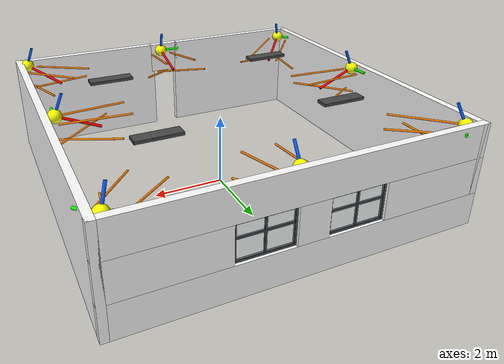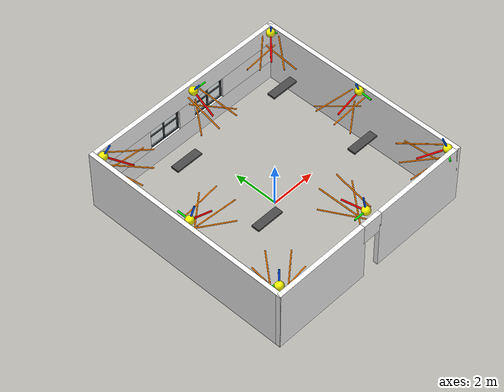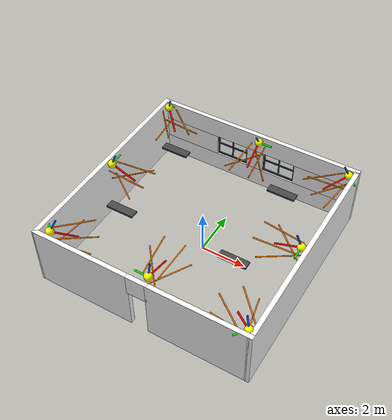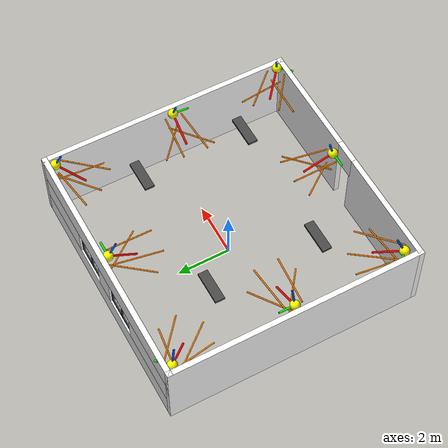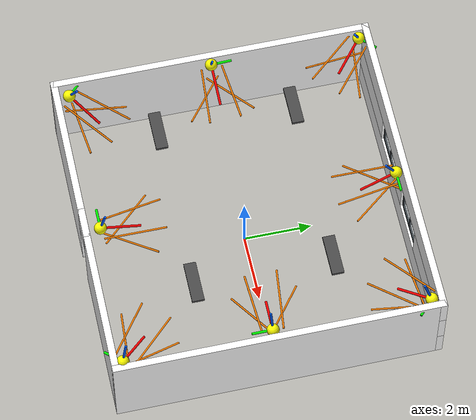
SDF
<sdf version="1.12">
 <world name="small_factory_room">
  <plugin name="gz::sim::systems::Physics" filename="gz-sim-physics-system"/>
  <plugin name="gz::sim::systems::Sensors" filename="gz-sim-sensors-system">
   <render_engine>ogre2</render_engine>
  </plugin>
  <plugin name="gz::sim::systems::SceneBroadcaster" filename="gz-sim-scene-broadcaster-system"/>
  <plugin name="gz::sim::systems::UserCommands" filename="gz-sim-user-commands-system"/>
  <gravity>0 0 -9.8100000000000005</gravity>
  <physics name="factory_physics" type="ode">
   <max_step_size>0.0040000000000000001</max_step_size>
   <real_time_factor>1</real_time_factor>
   <real_time_update_rate>250</real_time_update_rate>
  </physics>
  <scene>
   <ambient>0.300000012 0.300000012 0.300000012 1</ambient>
   <background>0.119999997 0.119999997 0.140000001 1</background>
   <grid>false</grid>
   <shadows>true</shadows>
  </scene>
  <magnetic_field>5.5644999999999998e-06 2.2875799999999999e-05 -4.2388400000000002e-05</magnetic_field>
  <atmosphere type="adiabatic"/>
  <joint name="ur5_rg2_world_joint" type="fixed"><parent>world</parent><child>ur5_rg2::base_link</child></joint>
  <model name="lamp_fixture_01">
   <static>true</static>
   <link name="lamp_fixture_01_link">
    <pose>-2.5 -2 2.8599999999999999 0 0 0</pose>
    <visual name="lamp_fixture_01_housing">
     <cast_shadows>false</cast_shadows>
     <geometry><box><size>1.2 0.34999999999999998 0.080000000000000002</size></box></geometry>
     <material>
      <ambient>0.180000007 0.180000007 0.180000007 1</ambient>
      <diffuse>0.280000001 0.280000001 0.280000001 1</diffuse>
      <specular>0.0799999982 0.0799999982 0.0799999982 1</specular>
     </material>
     <plugin filename="gz-sim-label-system" name="gz::sim::systems::Label"><label>10</label></plugin>
    </visual>
    <visual name="lamp_fixture_01_diffuser">
     <cast_shadows>false</cast_shadows>
     <pose>0 0 -0.040000000000000001 0 0 0</pose>
     <geometry><box><size>1.0800000000000001 0.23999999999999999 0.029999999999999999</size></box></geometry>
     <material>
      <ambient>0.920000017 0.920000017 0.860000014 1</ambient>
      <diffuse>0.980000019 0.980000019 0.899999976 1</diffuse>
      <specular>0.140000001 0.140000001 0.140000001 1</specular>
      <emissive>0.150000006 0.150000006 0.119999997 1</emissive>
     </material>
     <plugin filename="gz-sim-label-system" name="gz::sim::systems::Label"><label>10</label></plugin>
    </visual>
    <inertial>
     <mass>1</mass>
     <inertia><ixx>1</ixx><ixy>0</ixy><ixz>0</ixz><iyy>1</iyy><iyz>0</iyz><izz>1</izz></inertia>
    </inertial>
   </link>
  </model>
  <model name="lamp_fixture_02">
   <static>true</static>
   <link name="lamp_fixture_02_link">
    <pose>2.5 -2 2.8599999999999999 0 0 0</pose>
    <visual name="lamp_fixture_02_housing">
     <cast_shadows>false</cast_shadows>
     <geometry><box><size>1.2 0.34999999999999998 0.080000000000000002</size></box></geometry>
     <material>
      <ambient>0.180000007 0.180000007 0.180000007 1</ambient>
      <diffuse>0.280000001 0.280000001 0.280000001 1</diffuse>
      <specular>0.0799999982 0.0799999982 0.0799999982 1</specular>
     </material>
     <plugin filename="gz-sim-label-system" name="gz::sim::systems::Label"><label>10</label></plugin>
    </visual>
    <visual name="lamp_fixture_02_diffuser">
     <cast_shadows>false</cast_shadows>
     <pose>0 0 -0.040000000000000001 0 0 0</pose>
     <geometry><box><size>1.0800000000000001 0.23999999999999999 0.029999999999999999</size></box></geometry>
     <material>
      <ambient>0.920000017 0.920000017 0.860000014 1</ambient>
      <diffuse>0.980000019 0.980000019 0.899999976 1</diffuse>
      <specular>0.140000001 0.140000001 0.140000001 1</specular>
      <emissive>0.150000006 0.150000006 0.119999997 1</emissive>
     </material>
     <plugin filename="gz-sim-label-system" name="gz::sim::systems::Label"><label>10</label></plugin>
    </visual>
    <inertial>
     <mass>1</mass>
     <inertia><ixx>1</ixx><ixy>0</ixy><ixz>0</ixz><iyy>1</iyy><iyz>0</iyz><izz>1</izz></inertia>
    </inertial>
   </link>
  </model>
  <model name="lamp_fixture_03">
   <static>true</static>
   <link name="lamp_fixture_03_link">
    <pose>-2.5 2 2.8599999999999999 0 0 0</pose>
    <visual name="lamp_fixture_03_housing">
     <cast_shadows>false</cast_shadows>
     <geometry><box><size>1.2 0.34999999999999998 0.080000000000000002</size></box></geometry>
     <material>
      <ambient>0.180000007 0.180000007 0.180000007 1</ambient>
      <diffuse>0.280000001 0.280000001 0.280000001 1</diffuse>
      <specular>0.0799999982 0.0799999982 0.0799999982 1</specular>
     </material>
     <plugin filename="gz-sim-label-system" name="gz::sim::systems::Label"><label>10</label></plugin>
    </visual>
    <visual name="lamp_fixture_03_diffuser">
     <cast_shadows>false</cast_shadows>
     <pose>0 0 -0.040000000000000001 0 0 0</pose>
     <geometry><box><size>1.0800000000000001 0.23999999999999999 0.029999999999999999</size></box></geometry>
     <material>
      <ambient>0.920000017 0.920000017 0.860000014 1</ambient>
      <diffuse>0.980000019 0.980000019 0.899999976 1</diffuse>
      <specular>0.140000001 0.140000001 0.140000001 1</specular>
      <emissive>0.150000006 0.150000006 0.119999997 1</emissive>
     </material>
     <plugin filename="gz-sim-label-system" name="gz::sim::systems::Label"><label>10</label></plugin>
    </visual>
    <inertial>
     <mass>1</mass>
     <inertia><ixx>1</ixx><ixy>0</ixy><ixz>0</ixz><iyy>1</iyy><iyz>0</iyz><izz>1</izz></inertia>
    </inertial>
   </link>
  </model>
  <model name="lamp_fixture_04">
   <static>true</static>
   <link name="lamp_fixture_04_link">
    <pose>2.5 2 2.8599999999999999 0 0 0</pose>
    <visual name="lamp_fixture_04_housing">
     <cast_shadows>false</cast_shadows>
     <geometry><box><size>1.2 0.34999999999999998 0.080000000000000002</size></box></geometry>
     <material>
      <ambient>0.180000007 0.180000007 0.180000007 1</ambient>
      <diffuse>0.280000001 0.280000001 0.280000001 1</diffuse>
      <specular>0.0799999982 0.0799999982 0.0799999982 1</specular>
     </material>
     <plugin filename="gz-sim-label-system" name="gz::sim::systems::Label"><label>10</label></plugin>
    </visual>
    <visual name="lamp_fixture_04_diffuser">
     <cast_shadows>false</cast_shadows>
     <pose>0 0 -0.040000000000000001 0 0 0</pose>
     <geometry><box><size>1.0800000000000001 0.23999999999999999 0.029999999999999999</size></box></geometry>
     <material>
      <ambient>0.920000017 0.920000017 0.860000014 1</ambient>
      <diffuse>0.980000019 0.980000019 0.899999976 1</diffuse>
      <specular>0.140000001 0.140000001 0.140000001 1</specular>
      <emissive>0.150000006 0.150000006 0.119999997 1</emissive>
     </material>
     <plugin filename="gz-sim-label-system" name="gz::sim::systems::Label"><label>10</label></plugin>
    </visual>
    <inertial>
     <mass>1</mass>
     <inertia><ixx>1</ixx><ixy>0</ixy><ixz>0</ixz><iyy>1</iyy><iyz>0</iyz><izz>1</izz></inertia>
    </inertial>
   </link>
  </model>
  <light name="ceiling_light_01" type="point">
   <pose>-2.5 -2 2.7999999999999998 0 0 0</pose>
   <intensity>1</intensity>
   <direction>0 0 -1</direction>
   <diffuse>0.899999976 0.899999976 0.879999995 1</diffuse>
   <specular>0.100000001 0.100000001 0.100000001 1</specular>
   <attenuation>
    <range>12</range>
    <linear>0.029999999329447746</linear>
    <constant>0.5</constant>
    <quadratic>0.0020000000949949026</quadratic>
   </attenuation>
   <spot><inner_angle>0</inner_angle><outer_angle>0</outer_angle><falloff>0</falloff></spot>
  </light>
  <light name="ceiling_light_02" type="point">
   <pose>2.5 -2 2.7999999999999998 0 0 0</pose>
   <intensity>1</intensity>
   <direction>0 0 -1</direction>
   <diffuse>0.899999976 0.899999976 0.879999995 1</diffuse>
   <specular>0.100000001 0.100000001 0.100000001 1</specular>
   <attenuation>
    <range>12</range>
    <linear>0.029999999329447746</linear>
    <constant>0.5</constant>
    <quadratic>0.0020000000949949026</quadratic>
   </attenuation>
   <spot><inner_angle>0</inner_angle><outer_angle>0</outer_angle><falloff>0</falloff></spot>
  </light>
  <light name="ceiling_light_03" type="point">
   <pose>-2.5 2 2.7999999999999998 0 0 0</pose>
   <intensity>1</intensity>
   <direction>0 0 -1</direction>
   <diffuse>0.899999976 0.899999976 0.879999995 1</diffuse>
   <specular>0.100000001 0.100000001 0.100000001 1</specular>
   <attenuation>
    <range>12</range>
    <linear>0.029999999329447746</linear>
    <constant>0.5</constant>
    <quadratic>0.0020000000949949026</quadratic>
   </attenuation>
   <spot><inner_angle>0</inner_angle><outer_angle>0</outer_angle><falloff>0</falloff></spot>
  </light>
  <light name="ceiling_light_04" type="point">
   <pose>2.5 2 2.7999999999999998 0 0 0</pose>
   <intensity>1</intensity>
   <direction>0 0 -1</direction>
   <diffuse>0.899999976 0.899999976 0.879999995 1</diffuse>
   <specular>0.100000001 0.100000001 0.100000001 1</specular>
   <attenuation>
    <range>12</range>
    <linear>0.029999999329447746</linear>
    <constant>0.5</constant>
    <quadratic>0.0020000000949949026</quadratic>
   </attenuation>
   <spot><inner_angle>0</inner_angle><outer_angle>0</outer_angle><falloff>0</falloff></spot>
  </light>
  <model name="factory_shell_east_wall">
   <static>true</static>
   <link name="east_wall__east_wall_link">
    <pose>4.65 -6.34382544215e-14 1.5 0 0 1.5708</pose>
    <visual name="east_wall_visual">
     <geometry><mesh><uri>model://factory_shell/meshes/east_wall.obj</uri></mesh></geometry>
     <material>
      <ambient>1 1 1 1</ambient>
      <diffuse>1 1 1 1</diffuse>
      <specular>0.150000006 0.150000006 0.150000006 1</specular>
      <pbr>
       <metal>
        <albedo_map>model://factory_shell/textures/plastered_wall_02_1k/textures/plastered_wall_02_diff_1k.jpg</albedo_map>
        <roughness_map>model://factory_shell/textures/plastered_wall_02_1k/textures/plastered_wall_02_rough_1k.exr</roughness_map>
        <metalness>0.0</metalness>
        <ambient_occlusion_map>model://factory_shell/textures/plastered_wall_02_1k/textures/plastered_wall_02_ao_1k.jpg</ambient_occlusion_map>
        <normal_map type="tangent">model://factory_shell/textures/plastered_wall_02_1k/textures/plastered_wall_02_nor_gl_1k.exr</normal_map>
       </metal>
      </pbr>
     </material>
     <plugin filename="gz-sim-label-system" name="gz::sim::systems::Label"><label>3</label></plugin>
    </visual>
   </link>
  </model>
  <model name="factory_shell_north_wall">
   <static>true</static>
   <link name="north_wall__north_wall_center_pier_link">
    <pose>0 4.65 1.5 0 0 0</pose>
    <visual name="north_wall_center_pier_visual">
     <geometry><mesh><uri>model://factory_shell/meshes/north_wall_center_pier.obj</uri></mesh></geometry>
     <material>
      <ambient>1 1 1 1</ambient>
      <diffuse>1 1 1 1</diffuse>
      <specular>0.150000006 0.150000006 0.150000006 1</specular>
      <pbr>
       <metal>
        <albedo_map>model://factory_shell/textures/plastered_wall_02_1k/textures/plastered_wall_02_diff_1k.jpg</albedo_map>
        <roughness_map>model://factory_shell/textures/plastered_wall_02_1k/textures/plastered_wall_02_rough_1k.exr</roughness_map>
        <metalness>0.0</metalness>
        <ambient_occlusion_map>model://factory_shell/textures/plastered_wall_02_1k/textures/plastered_wall_02_ao_1k.jpg</ambient_occlusion_map>
        <normal_map type="tangent">model://factory_shell/textures/plastered_wall_02_1k/textures/plastered_wall_02_nor_gl_1k.exr</normal_map>
       </metal>
      </pbr>
     </material>
     <plugin filename="gz-sim-label-system" name="gz::sim::systems::Label"><label>3</label></plugin>
    </visual>
   </link>
   <link name="north_wall__north_wall_left_pier_link">
    <pose>-3.325 4.65 1.5 0 0 0</pose>
    <visual name="north_wall_left_pier_visual">
     <geometry><mesh><uri>model://factory_shell/meshes/north_wall_left_pier.obj</uri></mesh></geometry>
     <material>
      <ambient>1 1 1 1</ambient>
      <diffuse>1 1 1 1</diffuse>
      <specular>0.150000006 0.150000006 0.150000006 1</specular>
      <pbr>
       <metal>
        <albedo_map>model://factory_shell/textures/plastered_wall_02_1k/textures/plastered_wall_02_diff_1k.jpg</albedo_map>
        <roughness_map>model://factory_shell/textures/plastered_wall_02_1k/textures/plastered_wall_02_rough_1k.exr</roughness_map>
        <metalness>0.0</metalness>
        <ambient_occlusion_map>model://factory_shell/textures/plastered_wall_02_1k/textures/plastered_wall_02_ao_1k.jpg</ambient_occlusion_map>
        <normal_map type="tangent">model://factory_shell/textures/plastered_wall_02_1k/textures/plastered_wall_02_nor_gl_1k.exr</normal_map>
       </metal>
      </pbr>
     </material>
     <plugin filename="gz-sim-label-system" name="gz::sim::systems::Label"><label>3</label></plugin>
    </visual>
   </link>
   <link name="north_wall__north_wall_lower_link">
    <pose>0 4.65 0.55 0 0 0</pose>
    <visual name="north_wall_lower_visual">
     <geometry><mesh><uri>model://factory_shell/meshes/north_wall_lower.obj</uri></mesh></geometry>
     <material>
      <ambient>1 1 1 1</ambient>
      <diffuse>1 1 1 1</diffuse>
      <specular>0.150000006 0.150000006 0.150000006 1</specular>
      <pbr>
       <metal>
        <albedo_map>model://factory_shell/textures/plastered_wall_02_1k/textures/plastered_wall_02_diff_1k.jpg</albedo_map>
        <roughness_map>model://factory_shell/textures/plastered_wall_02_1k/textures/plastered_wall_02_rough_1k.exr</roughness_map>
        <metalness>0.0</metalness>
        <ambient_occlusion_map>model://factory_shell/textures/plastered_wall_02_1k/textures/plastered_wall_02_ao_1k.jpg</ambient_occlusion_map>
        <normal_map type="tangent">model://factory_shell/textures/plastered_wall_02_1k/textures/plastered_wall_02_nor_gl_1k.exr</normal_map>
       </metal>
      </pbr>
     </material>
     <plugin filename="gz-sim-label-system" name="gz::sim::systems::Label"><label>3</label></plugin>
    </visual>
   </link>
   <link name="north_wall__north_wall_right_pier_link">
    <pose>3.325 4.65 1.5 0 0 0</pose>
    <visual name="north_wall_right_pier_visual">
     <geometry><mesh><uri>model://factory_shell/meshes/north_wall_right_pier.obj</uri></mesh></geometry>
     <material>
      <ambient>1 1 1 1</ambient>
      <diffuse>1 1 1 1</diffuse>
      <specular>0.150000006 0.150000006 0.150000006 1</specular>
      <pbr>
       <metal>
        <albedo_map>model://factory_shell/textures/plastered_wall_02_1k/textures/plastered_wall_02_diff_1k.jpg</albedo_map>
        <roughness_map>model://factory_shell/textures/plastered_wall_02_1k/textures/plastered_wall_02_rough_1k.exr</roughness_map>
        <metalness>0.0</metalness>
        <ambient_occlusion_map>model://factory_shell/textures/plastered_wall_02_1k/textures/plastered_wall_02_ao_1k.jpg</ambient_occlusion_map>
        <normal_map type="tangent">model://factory_shell/textures/plastered_wall_02_1k/textures/plastered_wall_02_nor_gl_1k.exr</normal_map>
       </metal>
      </pbr>
     </material>
     <plugin filename="gz-sim-label-system" name="gz::sim::systems::Label"><label>3</label></plugin>
    </visual>
   </link>
   <link name="north_wall__north_wall_upper_link">
    <pose>0 4.65 2.45 0 0 0</pose>
    <visual name="north_wall_upper_visual">
     <geometry><mesh><uri>model://factory_shell/meshes/north_wall_upper.obj</uri></mesh></geometry>
     <material>
      <ambient>1 1 1 1</ambient>
      <diffuse>1 1 1 1</diffuse>
      <specular>0.150000006 0.150000006 0.150000006 1</specular>
      <pbr>
       <metal>
        <albedo_map>model://factory_shell/textures/plastered_wall_02_1k/textures/plastered_wall_02_diff_1k.jpg</albedo_map>
        <roughness_map>model://factory_shell/textures/plastered_wall_02_1k/textures/plastered_wall_02_rough_1k.exr</roughness_map>
        <metalness>0.0</metalness>
        <ambient_occlusion_map>model://factory_shell/textures/plastered_wall_02_1k/textures/plastered_wall_02_ao_1k.jpg</ambient_occlusion_map>
        <normal_map type="tangent">model://factory_shell/textures/plastered_wall_02_1k/textures/plastered_wall_02_nor_gl_1k.exr</normal_map>
       </metal>
      </pbr>
     </material>
     <plugin filename="gz-sim-label-system" name="gz::sim::systems::Label"><label>3</label></plugin>
    </visual>
   </link>
  </model>
  <model name="factory_shell_north_window_left">
   <static>true</static>
   <link name="north_wall__north_window_left_link">
    <pose>-1.15 4.65 1.5 0 0 0</pose>
    <visual name="north_window_left_frame_bottom_visual">
     <pose>0 0 -0.46999999999999997 0 0 0</pose>
     <geometry><box><size>1.5 0.059999999999999998 0.059999999999999998</size></box></geometry>
     <material>
      <ambient>0.180000007 0.200000003 0.219999999 1</ambient>
      <diffuse>0.280000001 0.300000012 0.319999993 1</diffuse>
      <specular>0.0799999982 0.0799999982 0.0799999982 1</specular>
     </material>
     <plugin filename="gz-sim-label-system" name="gz::sim::systems::Label"><label>5</label></plugin>
    </visual>
    <visual name="north_window_left_frame_center_visual">
     <geometry><box><size>0.050000000000000003 0.050000000000000003 0.92000000000000004</size></box></geometry>
     <material>
      <ambient>0.180000007 0.200000003 0.219999999 1</ambient>
      <diffuse>0.280000001 0.300000012 0.319999993 1</diffuse>
      <specular>0.0799999982 0.0799999982 0.0799999982 1</specular>
     </material>
     <plugin filename="gz-sim-label-system" name="gz::sim::systems::Label"><label>5</label></plugin>
    </visual>
    <visual name="north_window_left_frame_left_visual">
     <pose>-0.71999999999999997 0 0 0 0 0</pose>
     <geometry><box><size>0.059999999999999998 0.059999999999999998 1</size></box></geometry>
     <material>
      <ambient>0.180000007 0.200000003 0.219999999 1</ambient>
      <diffuse>0.280000001 0.300000012 0.319999993 1</diffuse>
      <specular>0.0799999982 0.0799999982 0.0799999982 1</specular>
     </material>
     <plugin filename="gz-sim-label-system" name="gz::sim::systems::Label"><label>5</label></plugin>
    </visual>
    <visual name="north_window_left_frame_right_visual">
     <pose>0.71999999999999997 0 0 0 0 0</pose>
     <geometry><box><size>0.059999999999999998 0.059999999999999998 1</size></box></geometry>
     <material>
      <ambient>0.180000007 0.200000003 0.219999999 1</ambient>
      <diffuse>0.280000001 0.300000012 0.319999993 1</diffuse>
      <specular>0.0799999982 0.0799999982 0.0799999982 1</specular>
     </material>
     <plugin filename="gz-sim-label-system" name="gz::sim::systems::Label"><label>5</label></plugin>
    </visual>
    <visual name="north_window_left_frame_top_visual">
     <pose>0 0 0.46999999999999997 0 0 0</pose>
     <geometry><box><size>1.5 0.059999999999999998 0.059999999999999998</size></box></geometry>
     <material>
      <ambient>0.180000007 0.200000003 0.219999999 1</ambient>
      <diffuse>0.280000001 0.300000012 0.319999993 1</diffuse>
      <specular>0.0799999982 0.0799999982 0.0799999982 1</specular>
     </material>
     <plugin filename="gz-sim-label-system" name="gz::sim::systems::Label"><label>5</label></plugin>
    </visual>
    <visual name="north_window_left_frame_transom_visual">
     <pose>0 0 0.10000000000000001 0 0 0</pose>
     <geometry><box><size>1.4199999999999999 0.050000000000000003 0.050000000000000003</size></box></geometry>
     <material>
      <ambient>0.180000007 0.200000003 0.219999999 1</ambient>
      <diffuse>0.280000001 0.300000012 0.319999993 1</diffuse>
      <specular>0.0799999982 0.0799999982 0.0799999982 1</specular>
     </material>
     <plugin filename="gz-sim-label-system" name="gz::sim::systems::Label"><label>5</label></plugin>
    </visual>
    <visual name="north_window_left_glass_visual">
     <geometry><box><size>1.4199999999999999 0.029999999999999999 0.92000000000000004</size></box></geometry>
     <material>
      <ambient>0.620000005 0.75 0.819999993 0.300000012</ambient>
      <diffuse>0.74000001 0.860000014 0.920000017 0.300000012</diffuse>
      <specular>0.219999999 0.219999999 0.219999999 1</specular>
     </material>
     <plugin filename="gz-sim-label-system" name="gz::sim::systems::Label"><label>5</label></plugin>
    </visual>
   </link>
  </model>
  <model name="factory_shell_north_window_right">
   <static>true</static>
   <link name="north_wall__north_window_right_link">
    <pose>1.15 4.65 1.5 0 0 0</pose>
    <visual name="north_window_right_frame_bottom_visual">
     <pose>0 0 -0.46999999999999997 0 0 0</pose>
     <geometry><box><size>1.5 0.059999999999999998 0.059999999999999998</size></box></geometry>
     <material>
      <ambient>0.180000007 0.200000003 0.219999999 1</ambient>
      <diffuse>0.280000001 0.300000012 0.319999993 1</diffuse>
      <specular>0.0799999982 0.0799999982 0.0799999982 1</specular>
     </material>
     <plugin filename="gz-sim-label-system" name="gz::sim::systems::Label"><label>5</label></plugin>
    </visual>
    <visual name="north_window_right_frame_center_visual">
     <geometry><box><size>0.050000000000000003 0.050000000000000003 0.92000000000000004</size></box></geometry>
     <material>
      <ambient>0.180000007 0.200000003 0.219999999 1</ambient>
      <diffuse>0.280000001 0.300000012 0.319999993 1</diffuse>
      <specular>0.0799999982 0.0799999982 0.0799999982 1</specular>
     </material>
     <plugin filename="gz-sim-label-system" name="gz::sim::systems::Label"><label>5</label></plugin>
    </visual>
    <visual name="north_window_right_frame_left_visual">
     <pose>-0.71999999999999997 0 0 0 0 0</pose>
     <geometry><box><size>0.059999999999999998 0.059999999999999998 1</size></box></geometry>
     <material>
      <ambient>0.180000007 0.200000003 0.219999999 1</ambient>
      <diffuse>0.280000001 0.300000012 0.319999993 1</diffuse>
      <specular>0.0799999982 0.0799999982 0.0799999982 1</specular>
     </material>
     <plugin filename="gz-sim-label-system" name="gz::sim::systems::Label"><label>5</label></plugin>
    </visual>
    <visual name="north_window_right_frame_right_visual">
     <pose>0.71999999999999997 0 0 0 0 0</pose>
     <geometry><box><size>0.059999999999999998 0.059999999999999998 1</size></box></geometry>
     <material>
      <ambient>0.180000007 0.200000003 0.219999999 1</ambient>
      <diffuse>0.280000001 0.300000012 0.319999993 1</diffuse>
      <specular>0.0799999982 0.0799999982 0.0799999982 1</specular>
     </material>
     <plugin filename="gz-sim-label-system" name="gz::sim::systems::Label"><label>5</label></plugin>
    </visual>
    <visual name="north_window_right_frame_top_visual">
     <pose>0 0 0.46999999999999997 0 0 0</pose>
     <geometry><box><size>1.5 0.059999999999999998 0.059999999999999998</size></box></geometry>
     <material>
      <ambient>0.180000007 0.200000003 0.219999999 1</ambient>
      <diffuse>0.280000001 0.300000012 0.319999993 1</diffuse>
      <specular>0.0799999982 0.0799999982 0.0799999982 1</specular>
     </material>
     <plugin filename="gz-sim-label-system" name="gz::sim::systems::Label"><label>5</label></plugin>
    </visual>
    <visual name="north_window_right_frame_transom_visual">
     <pose>0 0 0.10000000000000001 0 0 0</pose>
     <geometry><box><size>1.4199999999999999 0.050000000000000003 0.050000000000000003</size></box></geometry>
     <material>
      <ambient>0.180000007 0.200000003 0.219999999 1</ambient>
      <diffuse>0.280000001 0.300000012 0.319999993 1</diffuse>
      <specular>0.0799999982 0.0799999982 0.0799999982 1</specular>
     </material>
     <plugin filename="gz-sim-label-system" name="gz::sim::systems::Label"><label>5</label></plugin>
    </visual>
    <visual name="north_window_right_glass_visual">
     <geometry><box><size>1.4199999999999999 0.029999999999999999 0.92000000000000004</size></box></geometry>
     <material>
      <ambient>0.620000005 0.75 0.819999993 0.300000012</ambient>
      <diffuse>0.74000001 0.860000014 0.920000017 0.300000012</diffuse>
      <specular>0.219999999 0.219999999 0.219999999 1</specular>
     </material>
     <plugin filename="gz-sim-label-system" name="gz::sim::systems::Label"><label>5</label></plugin>
    </visual>
   </link>
  </model>
  <model name="factory_shell_south_wall">
   <static>true</static>
   <link name="south_wall__south_wall_left_link">
    <pose>-2.5625 -4.65 1.5 0 0 0</pose>
    <visual name="south_wall_left_visual">
     <geometry><mesh><uri>model://factory_shell/meshes/south_wall_left.obj</uri></mesh></geometry>
     <material>
      <ambient>1 1 1 1</ambient>
      <diffuse>1 1 1 1</diffuse>
      <specular>0.150000006 0.150000006 0.150000006 1</specular>
      <pbr>
       <metal>
        <albedo_map>model://factory_shell/textures/plastered_wall_02_1k/textures/plastered_wall_02_diff_1k.jpg</albedo_map>
        <roughness_map>model://factory_shell/textures/plastered_wall_02_1k/textures/plastered_wall_02_rough_1k.exr</roughness_map>
        <metalness>0.0</metalness>
        <ambient_occlusion_map>model://factory_shell/textures/plastered_wall_02_1k/textures/plastered_wall_02_ao_1k.jpg</ambient_occlusion_map>
        <normal_map type="tangent">model://factory_shell/textures/plastered_wall_02_1k/textures/plastered_wall_02_nor_gl_1k.exr</normal_map>
       </metal>
      </pbr>
     </material>
     <plugin filename="gz-sim-label-system" name="gz::sim::systems::Label"><label>3</label></plugin>
    </visual>
   </link>
   <link name="south_wall__south_wall_overdoor_link">
    <pose>0 -4.65 2.44228 0 0 0</pose>
    <visual name="south_wall_overdoor_visual">
     <geometry><mesh><uri>model://factory_shell/meshes/south_wall_overdoor.obj</uri></mesh></geometry>
     <material>
      <ambient>1 1 1 1</ambient>
      <diffuse>1 1 1 1</diffuse>
      <specular>0.150000006 0.150000006 0.150000006 1</specular>
      <pbr>
       <metal>
        <albedo_map>model://factory_shell/textures/plastered_wall_02_1k/textures/plastered_wall_02_diff_1k.jpg</albedo_map>
        <roughness_map>model://factory_shell/textures/plastered_wall_02_1k/textures/plastered_wall_02_rough_1k.exr</roughness_map>
        <metalness>0.0</metalness>
        <ambient_occlusion_map>model://factory_shell/textures/plastered_wall_02_1k/textures/plastered_wall_02_ao_1k.jpg</ambient_occlusion_map>
        <normal_map type="tangent">model://factory_shell/textures/plastered_wall_02_1k/textures/plastered_wall_02_nor_gl_1k.exr</normal_map>
       </metal>
      </pbr>
     </material>
     <plugin filename="gz-sim-label-system" name="gz::sim::systems::Label"><label>3</label></plugin>
    </visual>
   </link>
   <link name="south_wall__south_wall_right_link">
    <pose>2.5625 -4.65 1.5 0 0 0</pose>
    <visual name="south_wall_right_visual">
     <geometry><mesh><uri>model://factory_shell/meshes/south_wall_right.obj</uri></mesh></geometry>
     <material>
      <ambient>1 1 1 1</ambient>
      <diffuse>1 1 1 1</diffuse>
      <specular>0.150000006 0.150000006 0.150000006 1</specular>
      <pbr>
       <metal>
        <albedo_map>model://factory_shell/textures/plastered_wall_02_1k/textures/plastered_wall_02_diff_1k.jpg</albedo_map>
        <roughness_map>model://factory_shell/textures/plastered_wall_02_1k/textures/plastered_wall_02_rough_1k.exr</roughness_map>
        <metalness>0.0</metalness>
        <ambient_occlusion_map>model://factory_shell/textures/plastered_wall_02_1k/textures/plastered_wall_02_ao_1k.jpg</ambient_occlusion_map>
        <normal_map type="tangent">model://factory_shell/textures/plastered_wall_02_1k/textures/plastered_wall_02_nor_gl_1k.exr</normal_map>
       </metal>
      </pbr>
     </material>
     <plugin filename="gz-sim-label-system" name="gz::sim::systems::Label"><label>3</label></plugin>
    </visual>
   </link>
  </model>
  <model name="factory_shell_west_wall">
   <static>true</static>
   <link name="west_wall__west_wall_link">
    <pose>-4.65 6.34382544215e-14 1.5 0 0 1.5708</pose>
    <visual name="west_wall_visual">
     <geometry><mesh><uri>model://factory_shell/meshes/west_wall.obj</uri></mesh></geometry>
     <material>
      <ambient>1 1 1 1</ambient>
      <diffuse>1 1 1 1</diffuse>
      <specular>0.150000006 0.150000006 0.150000006 1</specular>
      <pbr>
       <metal>
        <albedo_map>model://factory_shell/textures/plastered_wall_02_1k/textures/plastered_wall_02_diff_1k.jpg</albedo_map>
        <roughness_map>model://factory_shell/textures/plastered_wall_02_1k/textures/plastered_wall_02_rough_1k.exr</roughness_map>
        <metalness>0.0</metalness>
        <ambient_occlusion_map>model://factory_shell/textures/plastered_wall_02_1k/textures/plastered_wall_02_ao_1k.jpg</ambient_occlusion_map>
        <normal_map type="tangent">model://factory_shell/textures/plastered_wall_02_1k/textures/plastered_wall_02_nor_gl_1k.exr</normal_map>
       </metal>
      </pbr>
     </material>
     <plugin filename="gz-sim-label-system" name="gz::sim::systems::Label"><label>3</label></plugin>
    </visual>
   </link>
  </model>
  <model name="debug_cam_corner_nw">
   <static>true</static>
   <pose>-4.368888 4.38902 2.76265 -0.018875 0.447306 -0.787697</pose>
   <link name="camera_body">
    <sensor name="cam_corner_nw_segmentation" type="segmentation">
     <topic>/perception/native/tuning/cam_corner_nw</topic>
     <camera>
      <segmentation_type>panoptic</segmentation_type>
      <horizontal_fov>1.047</horizontal_fov>
      <image><width>640</width><height>480</height></image>
      <clip><near>0.1</near><far>12.0</far></clip>
      <save enabled="true">
       <path>/home/telilab4090/Documents/Gazebo World/my_world/rt_out/experiments/perception_rt_small_v0/perception_raw/native/tuning/cam_corner_nw</path>
      </save>
     </camera>
     <always_on>1</always_on>
     <update_rate>30</update_rate>
     <visualize>true</visualize>
    </sensor>
    <visual name="origin_marker">
     <geometry><sphere><radius>0.18</radius></sphere></geometry>
     <material><ambient>1 1 0 1</ambient><diffuse>1 1 0 1</diffuse><emissive>0.9 0.9 0 1</emissive></material>
    </visual>
    <visual name="forward">
     <pose>0.6 0 0 0 1.57079632679 0</pose>
     <geometry><cylinder><length>1.2</length><radius>0.035</radius></cylinder></geometry>
     <material><ambient>1 0 0 1</ambient><diffuse>1 0 0 1</diffuse><emissive>1 0 0 1</emissive></material>
    </visual>
    <visual name="left">
     <pose>0 0.3 0 -1.57079632679 0 0</pose>
     <geometry><cylinder><length>0.6</length><radius>0.035</radius></cylinder></geometry>
     <material><ambient>0 1 0 1</ambient><diffuse>0 1 0 1</diffuse><emissive>0 1 0 1</emissive></material>
    </visual>
    <visual name="up">
     <pose>0 0 0.3 0 0 0</pose>
     <geometry><cylinder><length>0.6</length><radius>0.035</radius></cylinder></geometry>
     <material><ambient>0 0.35 1 1</ambient><diffuse>0 0.35 1 1</diffuse><emissive>0 0.35 1 1</emissive></material>
    </visual>
    <visual name="frustum_upper_left">
     <pose>0.9 0.3825 0.27 0.29145679448 1.14416883367 0.41151684607</pose>
     <geometry><cylinder><length>1.8</length><radius>0.025</radius></cylinder></geometry>
     <material><ambient>1 0.5 0 1</ambient><diffuse>1 0.5 0 1</diffuse><emissive>1 0.35 0 1</emissive></material>
    </visual>
    <visual name="frustum_upper_right">
     <pose>0.9 -0.3825 0.27 -0.29145679448 1.14416883367 -0.41151684607</pose>
     <geometry><cylinder><length>1.8</length><radius>0.025</radius></cylinder></geometry>
     <material><ambient>1 0.5 0 1</ambient><diffuse>1 0.5 0 1</diffuse><emissive>1 0.35 0 1</emissive></material>
    </visual>
    <visual name="frustum_lower_left">
     <pose>0.9 0.3825 -0.27 -0.29145679448 1.14416883367 0.41151684607</pose>
     <geometry><cylinder><length>1.8</length><radius>0.025</radius></cylinder></geometry>
     <material><ambient>1 0.5 0 1</ambient><diffuse>1 0.5 0 1</diffuse><emissive>1 0.35 0 1</emissive></material>
    </visual>
    <visual name="frustum_lower_right">
     <pose>0.9 -0.3825 -0.27 0.29145679448 1.14416883367 -0.41151684607</pose>
     <geometry><cylinder><length>1.8</length><radius>0.025</radius></cylinder></geometry>
     <material><ambient>1 0.5 0 1</ambient><diffuse>1 0.5 0 1</diffuse><emissive>1 0.35 0 1</emissive></material>
    </visual>
   </link>
  </model>
  <model name="debug_cam_corner_ne">
   <static>true</static>
   <pose>4.38989 4.38902 2.76265 -0.018875 0.447306 -2.356294</pose>
   <link name="camera_body">
    <sensor name="cam_corner_ne_segmentation" type="segmentation">
     <topic>/perception/native/tuning/cam_corner_ne</topic>
     <camera>
      <segmentation_type>panoptic</segmentation_type>
      <horizontal_fov>1.047</horizontal_fov>
      <image><width>640</width><height>480</height></image>
      <clip><near>0.1</near><far>12.0</far></clip>
      <save enabled="true">
       <path>/home/telilab4090/Documents/Gazebo World/my_world/rt_out/experiments/perception_rt_small_v0/perception_raw/native/tuning/cam_corner_ne</path>
      </save>
     </camera>
     <always_on>1</always_on>
     <update_rate>30</update_rate>
     <visualize>true</visualize>
    </sensor>
    <visual name="origin_marker">
     <geometry><sphere><radius>0.18</radius></sphere></geometry>
     <material><ambient>1 1 0 1</ambient><diffuse>1 1 0 1</diffuse><emissive>0.9 0.9 0 1</emissive></material>
    </visual>
    <visual name="forward">
     <pose>0.6 0 0 0 1.57079632679 0</pose>
     <geometry><cylinder><length>1.2</length><radius>0.035</radius></cylinder></geometry>
     <material><ambient>1 0 0 1</ambient><diffuse>1 0 0 1</diffuse><emissive>1 0 0 1</emissive></material>
    </visual>
    <visual name="left">
     <pose>0 0.3 0 -1.57079632679 0 0</pose>
     <geometry><cylinder><length>0.6</length><radius>0.035</radius></cylinder></geometry>
     <material><ambient>0 1 0 1</ambient><diffuse>0 1 0 1</diffuse><emissive>0 1 0 1</emissive></material>
    </visual>
    <visual name="up">
     <pose>0 0 0.3 0 0 0</pose>
     <geometry><cylinder><length>0.6</length><radius>0.035</radius></cylinder></geometry>
     <material><ambient>0 0.35 1 1</ambient><diffuse>0 0.35 1 1</diffuse><emissive>0 0.35 1 1</emissive></material>
    </visual>
    <visual name="frustum_upper_left">
     <pose>0.9 0.3825 0.27 0.29145679448 1.14416883367 0.41151684607</pose>
     <geometry><cylinder><length>1.8</length><radius>0.025</radius></cylinder></geometry>
     <material><ambient>1 0.5 0 1</ambient><diffuse>1 0.5 0 1</diffuse><emissive>1 0.35 0 1</emissive></material>
    </visual>
    <visual name="frustum_upper_right">
     <pose>0.9 -0.3825 0.27 -0.29145679448 1.14416883367 -0.41151684607</pose>
     <geometry><cylinder><length>1.8</length><radius>0.025</radius></cylinder></geometry>
     <material><ambient>1 0.5 0 1</ambient><diffuse>1 0.5 0 1</diffuse><emissive>1 0.35 0 1</emissive></material>
    </visual>
    <visual name="frustum_lower_left">
     <pose>0.9 0.3825 -0.27 -0.29145679448 1.14416883367 0.41151684607</pose>
     <geometry><cylinder><length>1.8</length><radius>0.025</radius></cylinder></geometry>
     <material><ambient>1 0.5 0 1</ambient><diffuse>1 0.5 0 1</diffuse><emissive>1 0.35 0 1</emissive></material>
    </visual>
    <visual name="frustum_lower_right">
     <pose>0.9 -0.3825 -0.27 0.29145679448 1.14416883367 -0.41151684607</pose>
     <geometry><cylinder><length>1.8</length><radius>0.025</radius></cylinder></geometry>
     <material><ambient>1 0.5 0 1</ambient><diffuse>1 0.5 0 1</diffuse><emissive>1 0.35 0 1</emissive></material>
    </visual>
   </link>
  </model>
  <model name="debug_cam_corner_sw">
   <static>true</static>
   <pose>-4.2766 -4.27322 2.72007 -0.014193 0.518246 0.774445</pose>
   <link name="camera_body">
    <sensor name="cam_corner_sw_segmentation" type="segmentation">
     <topic>/perception/native/tuning/cam_corner_sw</topic>
     <camera>
      <segmentation_type>panoptic</segmentation_type>
      <horizontal_fov>1.047</horizontal_fov>
      <image><width>640</width><height>480</height></image>
      <clip><near>0.1</near><far>12.0</far></clip>
      <save enabled="true">
       <path>/home/telilab4090/Documents/Gazebo World/my_world/rt_out/experiments/perception_rt_small_v0/perception_raw/native/tuning/cam_corner_sw</path>
      </save>
     </camera>
     <always_on>1</always_on>
     <update_rate>30</update_rate>
     <visualize>true</visualize>
    </sensor>
    <visual name="origin_marker">
     <geometry><sphere><radius>0.18</radius></sphere></geometry>
     <material><ambient>1 1 0 1</ambient><diffuse>1 1 0 1</diffuse><emissive>0.9 0.9 0 1</emissive></material>
    </visual>
    <visual name="forward">
     <pose>0.6 0 0 0 1.57079632679 0</pose>
     <geometry><cylinder><length>1.2</length><radius>0.035</radius></cylinder></geometry>
     <material><ambient>1 0 0 1</ambient><diffuse>1 0 0 1</diffuse><emissive>1 0 0 1</emissive></material>
    </visual>
    <visual name="left">
     <pose>0 0.3 0 -1.57079632679 0 0</pose>
     <geometry><cylinder><length>0.6</length><radius>0.035</radius></cylinder></geometry>
     <material><ambient>0 1 0 1</ambient><diffuse>0 1 0 1</diffuse><emissive>0 1 0 1</emissive></material>
    </visual>
    <visual name="up">
     <pose>0 0 0.3 0 0 0</pose>
     <geometry><cylinder><length>0.6</length><radius>0.035</radius></cylinder></geometry>
     <material><ambient>0 0.35 1 1</ambient><diffuse>0 0.35 1 1</diffuse><emissive>0 0.35 1 1</emissive></material>
    </visual>
    <visual name="frustum_upper_left">
     <pose>0.9 0.3825 0.27 0.29145679448 1.14416883367 0.41151684607</pose>
     <geometry><cylinder><length>1.8</length><radius>0.025</radius></cylinder></geometry>
     <material><ambient>1 0.5 0 1</ambient><diffuse>1 0.5 0 1</diffuse><emissive>1 0.35 0 1</emissive></material>
    </visual>
    <visual name="frustum_upper_right">
     <pose>0.9 -0.3825 0.27 -0.29145679448 1.14416883367 -0.41151684607</pose>
     <geometry><cylinder><length>1.8</length><radius>0.025</radius></cylinder></geometry>
     <material><ambient>1 0.5 0 1</ambient><diffuse>1 0.5 0 1</diffuse><emissive>1 0.35 0 1</emissive></material>
    </visual>
    <visual name="frustum_lower_left">
     <pose>0.9 0.3825 -0.27 -0.29145679448 1.14416883367 0.41151684607</pose>
     <geometry><cylinder><length>1.8</length><radius>0.025</radius></cylinder></geometry>
     <material><ambient>1 0.5 0 1</ambient><diffuse>1 0.5 0 1</diffuse><emissive>1 0.35 0 1</emissive></material>
    </visual>
    <visual name="frustum_lower_right">
     <pose>0.9 -0.3825 -0.27 0.29145679448 1.14416883367 -0.41151684607</pose>
     <geometry><cylinder><length>1.8</length><radius>0.025</radius></cylinder></geometry>
     <material><ambient>1 0.5 0 1</ambient><diffuse>1 0.5 0 1</diffuse><emissive>1 0.35 0 1</emissive></material>
    </visual>
   </link>
  </model>
  <model name="debug_cam_corner_se">
   <static>true</static>
   <pose>4.44776 -4.40805 2.80523 -0.023556 0.376367 2.408296</pose>
   <link name="camera_body">
    <sensor name="cam_corner_se_segmentation" type="segmentation">
     <topic>/perception/native/tuning/cam_corner_se</topic>
     <camera>
      <segmentation_type>panoptic</segmentation_type>
      <horizontal_fov>1.047</horizontal_fov>
      <image><width>640</width><height>480</height></image>
      <clip><near>0.1</near><far>12.0</far></clip>
      <save enabled="true">
       <path>/home/telilab4090/Documents/Gazebo World/my_world/rt_out/experiments/perception_rt_small_v0/perception_raw/native/tuning/cam_corner_se</path>
      </save>
     </camera>
     <always_on>1</always_on>
     <update_rate>30</update_rate>
     <visualize>true</visualize>
    </sensor>
    <visual name="origin_marker">
     <geometry><sphere><radius>0.18</radius></sphere></geometry>
     <material><ambient>1 1 0 1</ambient><diffuse>1 1 0 1</diffuse><emissive>0.9 0.9 0 1</emissive></material>
    </visual>
    <visual name="forward">
     <pose>0.6 0 0 0 1.57079632679 0</pose>
     <geometry><cylinder><length>1.2</length><radius>0.035</radius></cylinder></geometry>
     <material><ambient>1 0 0 1</ambient><diffuse>1 0 0 1</diffuse><emissive>1 0 0 1</emissive></material>
    </visual>
    <visual name="left">
     <pose>0 0.3 0 -1.57079632679 0 0</pose>
     <geometry><cylinder><length>0.6</length><radius>0.035</radius></cylinder></geometry>
     <material><ambient>0 1 0 1</ambient><diffuse>0 1 0 1</diffuse><emissive>0 1 0 1</emissive></material>
    </visual>
    <visual name="up">
     <pose>0 0 0.3 0 0 0</pose>
     <geometry><cylinder><length>0.6</length><radius>0.035</radius></cylinder></geometry>
     <material><ambient>0 0.35 1 1</ambient><diffuse>0 0.35 1 1</diffuse><emissive>0 0.35 1 1</emissive></material>
    </visual>
    <visual name="frustum_upper_left">
     <pose>0.9 0.3825 0.27 0.29145679448 1.14416883367 0.41151684607</pose>
     <geometry><cylinder><length>1.8</length><radius>0.025</radius></cylinder></geometry>
     <material><ambient>1 0.5 0 1</ambient><diffuse>1 0.5 0 1</diffuse><emissive>1 0.35 0 1</emissive></material>
    </visual>
    <visual name="frustum_upper_right">
     <pose>0.9 -0.3825 0.27 -0.29145679448 1.14416883367 -0.41151684607</pose>
     <geometry><cylinder><length>1.8</length><radius>0.025</radius></cylinder></geometry>
     <material><ambient>1 0.5 0 1</ambient><diffuse>1 0.5 0 1</diffuse><emissive>1 0.35 0 1</emissive></material>
    </visual>
    <visual name="frustum_lower_left">
     <pose>0.9 0.3825 -0.27 -0.29145679448 1.14416883367 0.41151684607</pose>
     <geometry><cylinder><length>1.8</length><radius>0.025</radius></cylinder></geometry>
     <material><ambient>1 0.5 0 1</ambient><diffuse>1 0.5 0 1</diffuse><emissive>1 0.35 0 1</emissive></material>
    </visual>
    <visual name="frustum_lower_right">
     <pose>0.9 -0.3825 -0.27 0.29145679448 1.14416883367 -0.41151684607</pose>
     <geometry><cylinder><length>1.8</length><radius>0.025</radius></cylinder></geometry>
     <material><ambient>1 0.5 0 1</ambient><diffuse>1 0.5 0 1</diffuse><emissive>1 0.35 0 1</emissive></material>
    </visual>
   </link>
  </model>
  <model name="debug_cam_wall_north">
   <static>true</static>
   <pose>0.221087 4.38902 2.71504 -0 0.562591 -1.5708</pose>
   <link name="camera_body">
    <sensor name="cam_wall_north_segmentation" type="segmentation">
     <topic>/perception/native/tuning/cam_wall_north</topic>
     <camera>
      <segmentation_type>panoptic</segmentation_type>
      <horizontal_fov>1.047</horizontal_fov>
      <image><width>640</width><height>480</height></image>
      <clip><near>0.1</near><far>12.0</far></clip>
      <save enabled="true">
       <path>/home/telilab4090/Documents/Gazebo World/my_world/rt_out/experiments/perception_rt_small_v0/perception_raw/native/tuning/cam_wall_north</path>
      </save>
     </camera>
     <always_on>1</always_on>
     <update_rate>30</update_rate>
     <visualize>true</visualize>
    </sensor>
    <visual name="origin_marker">
     <geometry><sphere><radius>0.18</radius></sphere></geometry>
     <material><ambient>1 1 0 1</ambient><diffuse>1 1 0 1</diffuse><emissive>0.9 0.9 0 1</emissive></material>
    </visual>
    <visual name="forward">
     <pose>0.6 0 0 0 1.57079632679 0</pose>
     <geometry><cylinder><length>1.2</length><radius>0.035</radius></cylinder></geometry>
     <material><ambient>1 0 0 1</ambient><diffuse>1 0 0 1</diffuse><emissive>1 0 0 1</emissive></material>
    </visual>
    <visual name="left">
     <pose>0 0.3 0 -1.57079632679 0 0</pose>
     <geometry><cylinder><length>0.6</length><radius>0.035</radius></cylinder></geometry>
     <material><ambient>0 1 0 1</ambient><diffuse>0 1 0 1</diffuse><emissive>0 1 0 1</emissive></material>
    </visual>
    <visual name="up">
     <pose>0 0 0.3 0 0 0</pose>
     <geometry><cylinder><length>0.6</length><radius>0.035</radius></cylinder></geometry>
     <material><ambient>0 0.35 1 1</ambient><diffuse>0 0.35 1 1</diffuse><emissive>0 0.35 1 1</emissive></material>
    </visual>
    <visual name="frustum_upper_left">
     <pose>0.9 0.3825 0.27 0.29145679448 1.14416883367 0.41151684607</pose>
     <geometry><cylinder><length>1.8</length><radius>0.025</radius></cylinder></geometry>
     <material><ambient>1 0.5 0 1</ambient><diffuse>1 0.5 0 1</diffuse><emissive>1 0.35 0 1</emissive></material>
    </visual>
    <visual name="frustum_upper_right">
     <pose>0.9 -0.3825 0.27 -0.29145679448 1.14416883367 -0.41151684607</pose>
     <geometry><cylinder><length>1.8</length><radius>0.025</radius></cylinder></geometry>
     <material><ambient>1 0.5 0 1</ambient><diffuse>1 0.5 0 1</diffuse><emissive>1 0.35 0 1</emissive></material>
    </visual>
    <visual name="frustum_lower_left">
     <pose>0.9 0.3825 -0.27 -0.29145679448 1.14416883367 0.41151684607</pose>
     <geometry><cylinder><length>1.8</length><radius>0.025</radius></cylinder></geometry>
     <material><ambient>1 0.5 0 1</ambient><diffuse>1 0.5 0 1</diffuse><emissive>1 0.35 0 1</emissive></material>
    </visual>
    <visual name="frustum_lower_right">
     <pose>0.9 -0.3825 -0.27 0.29145679448 1.14416883367 -0.41151684607</pose>
     <geometry><cylinder><length>1.8</length><radius>0.025</radius></cylinder></geometry>
     <material><ambient>1 0.5 0 1</ambient><diffuse>1 0.5 0 1</diffuse><emissive>1 0.35 0 1</emissive></material>
    </visual>
   </link>
  </model>
  <model name="debug_cam_wall_south">
   <static>true</static>
   <pose>0.221056 -4.22159 2.7964 0.000426 0.271157 1.577903</pose>
   <link name="camera_body">
    <sensor name="cam_wall_south_segmentation" type="segmentation">
     <topic>/perception/native/tuning/cam_wall_south</topic>
     <camera>
      <segmentation_type>panoptic</segmentation_type>
      <horizontal_fov>1.047</horizontal_fov>
      <image><width>640</width><height>480</height></image>
      <clip><near>0.1</near><far>12.0</far></clip>
      <save enabled="true">
       <path>/home/telilab4090/Documents/Gazebo World/my_world/rt_out/experiments/perception_rt_small_v0/perception_raw/native/tuning/cam_wall_south</path>
      </save>
     </camera>
     <always_on>1</always_on>
     <update_rate>30</update_rate>
     <visualize>true</visualize>
    </sensor>
    <visual name="origin_marker">
     <geometry><sphere><radius>0.18</radius></sphere></geometry>
     <material><ambient>1 1 0 1</ambient><diffuse>1 1 0 1</diffuse><emissive>0.9 0.9 0 1</emissive></material>
    </visual>
    <visual name="forward">
     <pose>0.6 0 0 0 1.57079632679 0</pose>
     <geometry><cylinder><length>1.2</length><radius>0.035</radius></cylinder></geometry>
     <material><ambient>1 0 0 1</ambient><diffuse>1 0 0 1</diffuse><emissive>1 0 0 1</emissive></material>
    </visual>
    <visual name="left">
     <pose>0 0.3 0 -1.57079632679 0 0</pose>
     <geometry><cylinder><length>0.6</length><radius>0.035</radius></cylinder></geometry>
     <material><ambient>0 1 0 1</ambient><diffuse>0 1 0 1</diffuse><emissive>0 1 0 1</emissive></material>
    </visual>
    <visual name="up">
     <pose>0 0 0.3 0 0 0</pose>
     <geometry><cylinder><length>0.6</length><radius>0.035</radius></cylinder></geometry>
     <material><ambient>0 0.35 1 1</ambient><diffuse>0 0.35 1 1</diffuse><emissive>0 0.35 1 1</emissive></material>
    </visual>
    <visual name="frustum_upper_left">
     <pose>0.9 0.3825 0.27 0.29145679448 1.14416883367 0.41151684607</pose>
     <geometry><cylinder><length>1.8</length><radius>0.025</radius></cylinder></geometry>
     <material><ambient>1 0.5 0 1</ambient><diffuse>1 0.5 0 1</diffuse><emissive>1 0.35 0 1</emissive></material>
    </visual>
    <visual name="frustum_upper_right">
     <pose>0.9 -0.3825 0.27 -0.29145679448 1.14416883367 -0.41151684607</pose>
     <geometry><cylinder><length>1.8</length><radius>0.025</radius></cylinder></geometry>
     <material><ambient>1 0.5 0 1</ambient><diffuse>1 0.5 0 1</diffuse><emissive>1 0.35 0 1</emissive></material>
    </visual>
    <visual name="frustum_lower_left">
     <pose>0.9 0.3825 -0.27 -0.29145679448 1.14416883367 0.41151684607</pose>
     <geometry><cylinder><length>1.8</length><radius>0.025</radius></cylinder></geometry>
     <material><ambient>1 0.5 0 1</ambient><diffuse>1 0.5 0 1</diffuse><emissive>1 0.35 0 1</emissive></material>
    </visual>
    <visual name="frustum_lower_right">
     <pose>0.9 -0.3825 -0.27 0.29145679448 1.14416883367 -0.41151684607</pose>
     <geometry><cylinder><length>1.8</length><radius>0.025</radius></cylinder></geometry>
     <material><ambient>1 0.5 0 1</ambient><diffuse>1 0.5 0 1</diffuse><emissive>1 0.35 0 1</emissive></material>
    </visual>
   </link>
  </model>
  <model name="debug_cam_wall_east">
   <static>true</static>
   <pose>4.38989 -0.157588 2.81304 -0.047579 0.393096 3.098594</pose>
   <link name="camera_body">
    <sensor name="cam_wall_east_segmentation" type="segmentation">
     <topic>/perception/native/tuning/cam_wall_east</topic>
     <camera>
      <segmentation_type>panoptic</segmentation_type>
      <horizontal_fov>1.047</horizontal_fov>
      <image><width>640</width><height>480</height></image>
      <clip><near>0.1</near><far>12.0</far></clip>
      <save enabled="true">
       <path>/home/telilab4090/Documents/Gazebo World/my_world/rt_out/experiments/perception_rt_small_v0/perception_raw/native/tuning/cam_wall_east</path>
      </save>
     </camera>
     <always_on>1</always_on>
     <update_rate>30</update_rate>
     <visualize>true</visualize>
    </sensor>
    <visual name="origin_marker">
     <geometry><sphere><radius>0.18</radius></sphere></geometry>
     <material><ambient>1 1 0 1</ambient><diffuse>1 1 0 1</diffuse><emissive>0.9 0.9 0 1</emissive></material>
    </visual>
    <visual name="forward">
     <pose>0.6 0 0 0 1.57079632679 0</pose>
     <geometry><cylinder><length>1.2</length><radius>0.035</radius></cylinder></geometry>
     <material><ambient>1 0 0 1</ambient><diffuse>1 0 0 1</diffuse><emissive>1 0 0 1</emissive></material>
    </visual>
    <visual name="left">
     <pose>0 0.3 0 -1.57079632679 0 0</pose>
     <geometry><cylinder><length>0.6</length><radius>0.035</radius></cylinder></geometry>
     <material><ambient>0 1 0 1</ambient><diffuse>0 1 0 1</diffuse><emissive>0 1 0 1</emissive></material>
    </visual>
    <visual name="up">
     <pose>0 0 0.3 0 0 0</pose>
     <geometry><cylinder><length>0.6</length><radius>0.035</radius></cylinder></geometry>
     <material><ambient>0 0.35 1 1</ambient><diffuse>0 0.35 1 1</diffuse><emissive>0 0.35 1 1</emissive></material>
    </visual>
    <visual name="frustum_upper_left">
     <pose>0.9 0.3825 0.27 0.29145679448 1.14416883367 0.41151684607</pose>
     <geometry><cylinder><length>1.8</length><radius>0.025</radius></cylinder></geometry>
     <material><ambient>1 0.5 0 1</ambient><diffuse>1 0.5 0 1</diffuse><emissive>1 0.35 0 1</emissive></material>
    </visual>
    <visual name="frustum_upper_right">
     <pose>0.9 -0.3825 0.27 -0.29145679448 1.14416883367 -0.41151684607</pose>
     <geometry><cylinder><length>1.8</length><radius>0.025</radius></cylinder></geometry>
     <material><ambient>1 0.5 0 1</ambient><diffuse>1 0.5 0 1</diffuse><emissive>1 0.35 0 1</emissive></material>
    </visual>
    <visual name="frustum_lower_left">
     <pose>0.9 0.3825 -0.27 -0.29145679448 1.14416883367 0.41151684607</pose>
     <geometry><cylinder><length>1.8</length><radius>0.025</radius></cylinder></geometry>
     <material><ambient>1 0.5 0 1</ambient><diffuse>1 0.5 0 1</diffuse><emissive>1 0.35 0 1</emissive></material>
    </visual>
    <visual name="frustum_lower_right">
     <pose>0.9 -0.3825 -0.27 0.29145679448 1.14416883367 -0.41151684607</pose>
     <geometry><cylinder><length>1.8</length><radius>0.025</radius></cylinder></geometry>
     <material><ambient>1 0.5 0 1</ambient><diffuse>1 0.5 0 1</diffuse><emissive>1 0.35 0 1</emissive></material>
    </visual>
   </link>
  </model>
  <model name="debug_cam_wall_west">
   <static>true</static>
   <pose>-4.368888 -0.03657 2.817008 0.035211 0.406352 0.030119</pose>
   <link name="camera_body">
    <sensor name="cam_wall_west_segmentation" type="segmentation">
     <topic>/perception/native/tuning/cam_wall_west</topic>
     <camera>
      <segmentation_type>panoptic</segmentation_type>
      <horizontal_fov>1.047</horizontal_fov>
      <image><width>640</width><height>480</height></image>
      <clip><near>0.1</near><far>12.0</far></clip>
      <save enabled="true">
       <path>/home/telilab4090/Documents/Gazebo World/my_world/rt_out/experiments/perception_rt_small_v0/perception_raw/native/tuning/cam_wall_west</path>
      </save>
     </camera>
     <always_on>1</always_on>
     <update_rate>30</update_rate>
     <visualize>true</visualize>
    </sensor>
    <visual name="origin_marker">
     <geometry><sphere><radius>0.18</radius></sphere></geometry>
     <material><ambient>1 1 0 1</ambient><diffuse>1 1 0 1</diffuse><emissive>0.9 0.9 0 1</emissive></material>
    </visual>
    <visual name="forward">
     <pose>0.6 0 0 0 1.57079632679 0</pose>
     <geometry><cylinder><length>1.2</length><radius>0.035</radius></cylinder></geometry>
     <material><ambient>1 0 0 1</ambient><diffuse>1 0 0 1</diffuse><emissive>1 0 0 1</emissive></material>
    </visual>
    <visual name="left">
     <pose>0 0.3 0 -1.57079632679 0 0</pose>
     <geometry><cylinder><length>0.6</length><radius>0.035</radius></cylinder></geometry>
     <material><ambient>0 1 0 1</ambient><diffuse>0 1 0 1</diffuse><emissive>0 1 0 1</emissive></material>
    </visual>
    <visual name="up">
     <pose>0 0 0.3 0 0 0</pose>
     <geometry><cylinder><length>0.6</length><radius>0.035</radius></cylinder></geometry>
     <material><ambient>0 0.35 1 1</ambient><diffuse>0 0.35 1 1</diffuse><emissive>0 0.35 1 1</emissive></material>
    </visual>
    <visual name="frustum_upper_left">
     <pose>0.9 0.3825 0.27 0.29145679448 1.14416883367 0.41151684607</pose>
     <geometry><cylinder><length>1.8</length><radius>0.025</radius></cylinder></geometry>
     <material><ambient>1 0.5 0 1</ambient><diffuse>1 0.5 0 1</diffuse><emissive>1 0.35 0 1</emissive></material>
    </visual>
    <visual name="frustum_upper_right">
     <pose>0.9 -0.3825 0.27 -0.29145679448 1.14416883367 -0.41151684607</pose>
     <geometry><cylinder><length>1.8</length><radius>0.025</radius></cylinder></geometry>
     <material><ambient>1 0.5 0 1</ambient><diffuse>1 0.5 0 1</diffuse><emissive>1 0.35 0 1</emissive></material>
    </visual>
    <visual name="frustum_lower_left">
     <pose>0.9 0.3825 -0.27 -0.29145679448 1.14416883367 0.41151684607</pose>
     <geometry><cylinder><length>1.8</length><radius>0.025</radius></cylinder></geometry>
     <material><ambient>1 0.5 0 1</ambient><diffuse>1 0.5 0 1</diffuse><emissive>1 0.35 0 1</emissive></material>
    </visual>
    <visual name="frustum_lower_right">
     <pose>0.9 -0.3825 -0.27 0.29145679448 1.14416883367 -0.41151684607</pose>
     <geometry><cylinder><length>1.8</length><radius>0.025</radius></cylinder></geometry>
     <material><ambient>1 0.5 0 1</ambient><diffuse>1 0.5 0 1</diffuse><emissive>1 0.35 0 1</emissive></material>
    </visual>
   </link>
  </model>
 </world>
</sdf>
